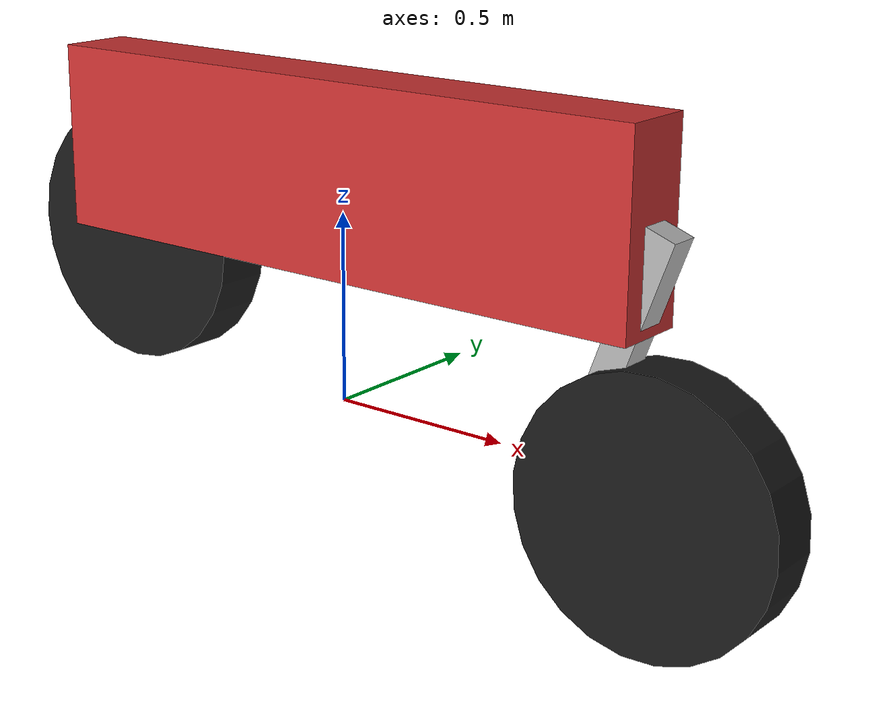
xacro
<?xml version="1.0"?>
<robot xmlns:xacro="http://www.ros.org/wiki/xacro" name="two_wheel_bike">

  <!-- Constants for realistic motorcycle -->
  <xacro:property name="PI" value="3.1415926535897931"/>
  <xacro:property name="chassis_mass" value="120.0"/>  <!-- Heavier like real motorcycle -->
  <xacro:property name="wheel_mass" value="8.0"/>     <!-- Heavier wheels for gyroscopic effect -->
  <xacro:property name="fork_mass" value="5.0"/>
  <xacro:property name="wheel_radius" value="0.35"/>   <!-- Larger wheels -->
  <xacro:property name="wheel_width" value="0.15"/>    <!-- Wider tires -->
  <xacro:property name="chassis_length" value="1.8"/>  <!-- Longer wheelbase -->
  <xacro:property name="chassis_height" value="0.5"/>
  <xacro:property name="chassis_width" value="0.2"/>
  <xacro:property name="fork_length" value="0.7"/>     <!-- Longer fork -->
  <xacro:property name="caster_angle" value="${PI/9}"/> <!-- 20 degrees caster -->

  <!-- Base Link (Main Frame) -->
  <link name="base_link">
    <visual>
      <origin xyz="0 0 ${wheel_radius + chassis_height/2}" rpy="0 0 0"/>
      <geometry>
        <box size="${chassis_length} ${chassis_width} ${chassis_height}"/>
      </geometry>
      <material name="red">
        <color rgba="0.8 0.2 0.2 1.0"/>
      </material>
    </visual>
    <collision>
      <origin xyz="0 0 ${wheel_radius + chassis_height/2}" rpy="0 0 0"/>
      <geometry>
        <box size="${chassis_length} ${chassis_width} ${chassis_height}"/>
      </geometry>
    </collision>
    <inertial>
      <origin xyz="0 0 ${chassis_height/2}" rpy="0 0 0"/>
      <mass value="${chassis_mass}"/>
      <inertia ixx="${chassis_mass*(chassis_width*chassis_width+chassis_height*chassis_height)/12}"
               ixy="0" ixz="0"
               iyy="${chassis_mass*(chassis_length*chassis_length+chassis_height*chassis_height)/12}"
               iyz="0"
               izz="${chassis_mass*(chassis_length*chassis_length+chassis_width*chassis_width)/12}"/>
    </inertial>
  </link>

  <!-- Rear Wheel with high rotational inertia for gyroscopic effect -->
  <link name="rear_wheel_link">
    <visual>
      <origin xyz="0 0 0" rpy="${PI/2} 0 0"/>
      <geometry>
        <cylinder radius="${wheel_radius}" length="${wheel_width}"/>
      </geometry>
      <material name="black">
        <color rgba="0.1 0.1 0.1 1.0"/>
      </material>
    </visual>
    <collision>
      <origin xyz="0 0 0" rpy="${PI/2} 0 0"/>
      <geometry>
        <cylinder radius="${wheel_radius}" length="${wheel_width}"/>
      </geometry>
      <surface>
        <friction>
          <ode>
            <mu>1.5</mu>    <!-- High friction for traction -->
            <mu2>1.5</mu2>
          </ode>
        </friction>
      </surface>
    </collision>
    <inertial>
      <origin xyz="0 0 0" rpy="0 0 0"/>
      <mass value="${wheel_mass}"/>
      <!-- High rotational inertia for gyroscopic stability -->
      <inertia ixx="${wheel_mass*(3*wheel_radius*wheel_radius+wheel_width*wheel_width)/12}"
               ixy="0" ixz="0"
               iyy="${wheel_mass*(3*wheel_radius*wheel_radius+wheel_width*wheel_width)/12}"
               iyz="0"
               izz="${wheel_mass*wheel_radius*wheel_radius}"/>  <!-- Increased for gyroscopic effect -->
    </inertial>
  </link>

  <joint name="rear_wheel_joint" type="continuous">
    <parent link="base_link"/>
    <child link="rear_wheel_link"/>
    <origin xyz="-${chassis_length/2 - 0.2} 0 ${wheel_radius}" rpy="0 0 0"/>
    <axis xyz="0 1 0"/>
    <dynamics damping="0.5" friction="0.1"/>  <!-- Some damping for realism -->
  </joint>

  <!-- Front Fork with proper caster angle -->
  <link name="front_fork_link">
    <visual>
        <origin xyz="${fork_length*sin(caster_angle)/2} 0 -${fork_length*cos(caster_angle)/2}"
                rpy="0 ${caster_angle} 0"/>
        <geometry>
            <box size="0.08 0.08 ${fork_length}"/>
        </geometry>
        <material name="silver">
            <color rgba="0.7 0.7 0.7 1.0"/>
        </material>
    </visual>
    <collision>
        <origin xyz="${fork_length*sin(caster_angle)/2} 0 -${fork_length*cos(caster_angle)/2}"
                rpy="0 ${caster_angle} 0"/>
        <geometry>
            <box size="0.08 0.08 ${fork_length}"/>
        </geometry>
    </collision>
    <inertial>
      <origin xyz="0 0 0" rpy="0 0 0"/>
      <mass value="${fork_mass}"/>
      <inertia ixx="${fork_mass*(0.08*0.08+fork_length*fork_length)/12}"
               ixy="0" ixz="0"
               iyy="${fork_mass*(0.08*0.08+fork_length*fork_length)/12}"
               iyz="0"
               izz="${fork_mass*(0.08*0.08+0.08*0.08)/12}"/>
    </inertial>
  </link>

  <joint name="steering_joint" type="revolute">
    <parent link="base_link"/>
    <child link="front_fork_link"/>
    <origin xyz="${chassis_length/2 - 0.2} 0 ${wheel_radius + chassis_height/2}" rpy="0 0 0"/>
    <axis xyz="0 0 1"/>
    <limit lower="-0.698" upper="0.698" effort="50" velocity="2"/>  <!-- ±40 degrees, higher torque -->
    <dynamics damping="1.0" friction="0.2"/>
  </joint>

  <!-- Front Wheel with gyroscopic properties -->
  <link name="front_wheel_link">
    <visual>
      <origin xyz="0 0 0" rpy="${PI/2} 0 0"/>
      <geometry>
        <cylinder radius="${wheel_radius}" length="${wheel_width}"/>
      </geometry>
      <material name="black">
        <color rgba="0.1 0.1 0.1 1.0"/>
      </material>
    </visual>
    <collision>
      <origin xyz="0 0 0" rpy="${PI/2} 0 0"/>
      <geometry>
        <cylinder radius="${wheel_radius}" length="${wheel_width}"/>
      </geometry>
      <surface>
        <friction>
          <ode>
            <mu>1.5</mu>
            <mu2>1.2</mu2>  <!-- Slightly less lateral friction for steering -->
          </ode>
        </friction>
      </surface>
    </collision>
    <inertial>
      <origin xyz="0 0 0" rpy="0 0 0"/>
      <mass value="${wheel_mass}"/>
      <inertia ixx="${wheel_mass*(3*wheel_radius*wheel_radius+wheel_width*wheel_width)/12}"
               ixy="0" ixz="0"
               iyy="${wheel_mass*(3*wheel_radius*wheel_radius+wheel_width*wheel_width)/12}"
               iyz="0"
               izz="${wheel_mass*wheel_radius*wheel_radius}"/>  <!-- High rotational inertia -->
    </inertial>
  </link>

  <joint name="front_wheel_joint" type="continuous">
    <parent link="front_fork_link"/>
    <child link="front_wheel_link"/>
    <origin xyz="${fork_length*sin(caster_angle)} 0 -${fork_length*cos(caster_angle)}"
            rpy="0 ${caster_angle} 0"/>
    <axis xyz="0 1 0"/>
    <dynamics damping="0.5" friction="0.1"/>
  </joint>

  <!-- Gazebo materials -->
  <gazebo reference="base_link">
    <material>Gazebo/Red</material>
    <mu1>0.3</mu1>
    <mu2>0.3</mu2>
  </gazebo>

  <gazebo reference="rear_wheel_link">
    <material>Gazebo/Black</material>
    <mu1>1.8</mu1>  <!-- High traction -->
    <mu2>1.5</mu2>
    <kp>10000000</kp>
    <kd>1000</kd>
  </gazebo>

  <gazebo reference="front_wheel_link">
    <material>Gazebo/Black</material>
    <mu1>1.5</mu1>
    <mu2>1.2</mu2>  <!-- Allow some slip for steering -->
    <kp>10000000</kp>
    <kd>1000</kd>
  </gazebo>

  <gazebo reference="front_fork_link">
    <material>Gazebo/Grey</material>
  </gazebo>

  <!-- IMU on the main frame -->
  <gazebo reference="base_link">
    <sensor name="imu_sensor" type="imu">
      <always_on>true</always_on>
      <update_rate>100</update_rate>
      <plugin filename="libgazebo_ros_imu_sensor.so" name="imu_plugin">
        <topicName>imu</topicName>
        <bodyName>base_link</bodyName>
        <updateRateHZ>100.0</updateRateHZ>
        <gaussianNoise>0.01</gaussianNoise>
        <xyzOffset>0 0 0</xyzOffset>
        <rpyOffset>0 0 0</rpyOffset>
        <frameName>base_link</frameName>
        <initialOrientationAsReference>false</initialOrientationAsReference>
      </plugin>
    </sensor>
  </gazebo>

  <!-- Custom motorcycle controller plugin -->
  <gazebo>
    <plugin name="motorcycle_controller" filename="libgazebo_ros_diff_drive.so">
        <robotNamespace>/</robotNamespace>

        <!-- Use rear wheel for drive, steering for direction -->
        <leftJoint>rear_wheel_joint</leftJoint>
        <rightJoint>rear_wheel_joint</rightJoint>  <!-- Same wheel for both to avoid differential -->

        <wheelSeparation>0.1</wheelSeparation>  <!-- Small separation since both are same wheel -->
        <wheelDiameter>${2*wheel_radius}</wheelDiameter>

        <maxWheelTorque>200</maxWheelTorque>  <!-- High torque for acceleration -->
        <maxWheelAcceleration>5.0</maxWheelAcceleration>

        <commandTopic>cmd_vel</commandTopic>
        <odometryTopic>odom</odometryTopic>
        <odometryFrame>odom</odometryFrame>
        <robotBaseFrame>base_link</robotBaseFrame>

        <publishOdom>true</publishOdom>
        <publishOdomTF>true</publishOdomTF>
        <publishWheelTF>false</publishWheelTF>

        <updateRate>50</updateRate>  <!-- Higher update rate -->
        <legacyMode>false</legacyMode>
    </plugin>
  </gazebo>

  <!-- Separate steering controller -->
  <gazebo>
    <plugin name="steering_controller" filename="libgazebo_ros_joint_state_publisher.so">
      <robotNamespace>/</robotNamespace>
      <jointName>steering_joint</jointName>
      <updateRate>50</updateRate>
    </plugin>
  </gazebo>

  <!-- Physics properties for realistic simulation -->
  <gazebo>
    <plugin name="gazebo_ros_control" filename="libgazebo_ros_control.so">
      <robotNamespace>/</robotNamespace>
    </plugin>
  </gazebo>

</robot>
